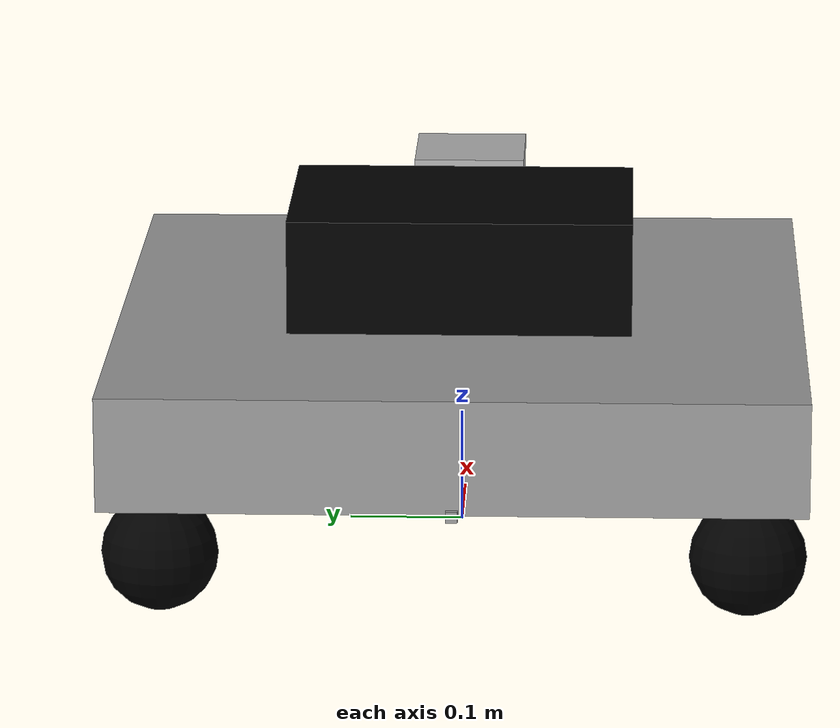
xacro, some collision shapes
<?xml version="1.0"?>
<robot xmlns:xacro="http://www.ros.org/wiki/xacro" name="ropod" >

    <xacro:property name="namespace" value="$(arg namespace)"/>
    <xacro:arg name="namespace" default="ropod"/>

    <xacro:property name="base_length" value="0.6" />
    <xacro:property name="base_thickness" value="0.1" />
    <xacro:property name="wheel_radius" value="0.05" />
    <xacro:property name="wheel_mass" value="1.0" />
    <xacro:property name="base_mass" value="8.0" />
    <xacro:property name="inertia_base" value="0.5" />
    <xacro:property name="inertia_wheels" value="0.001" />

    <xacro:include filename="$(find ropod_sim)/description/xacro/hokuyo.xacro" />

    <material name="silver">
        <color rgba="0.6 0.6 0.6 1.0"/>
    </material>

    <material name="black">
        <color rgba="0.0 0.0 0.0 1.0"/>
    </material>

    <xacro:macro name="sphere_inertia" params="mass radius">
        <inertial>
            <mass value="${mass}" />
            <inertia ixx="${(mass*0.4)*(radius*radius)}"
                     iyy="${(mass*0.4)*(radius*radius)}"
                     iyz="0.0" ixy="0.0" ixz="0.0"
                     izz="${(mass*0.4)*(radius*radius)}" />
        </inertial>
    </xacro:macro>

    <xacro:macro name="ropod_wheel" params="name parent *origin mass radius material_name">
        <joint name="${name}_joint" type="fixed">
            <xacro:insert_block name="origin" />
            <parent link="${parent}_link"/>
            <child link="${name}_link"/>
        </joint>
        <link name="${name}_link">
            <visual>
                <geometry>
                    <sphere radius="${radius}" />
                </geometry>
                <material name="${material_name}"/>
            </visual>
            <collision>
                <geometry>
                    <sphere radius="${radius}" />
                </geometry>
            </collision>
            <xacro:sphere_inertia mass="${mass}" radius="${radius}" />
        </link>
        <gazebo reference="${name}_link">
            <mu1>0.0</mu1>
            <mu2>0.0</mu2>
            <material>
                <ambient>0.0 0.0 0.0 1</ambient>
                <diffuse>0.0 0.0 0.0 1</diffuse>
                <specular>0.01 0.01 0.01 1</specular>
            </material>
        </gazebo>
    </xacro:macro>

    <link name="base_link" />

    <joint name="base_body_joint" type="fixed">
        <origin xyz="0.0 0.0 ${wheel_radius*2 + base_thickness*0.5}" rpy="0 0 0"/>
        <parent link="base_link"/>
        <child link="base_body_link"/>
    </joint>

    <link name="base_body_link">
        <visual>
            <geometry>
                <box size="${base_length} ${base_length} ${base_thickness}"/>
            </geometry>
            <origin xyz="0.0 0.0 0.0" rpy="0.0 0.0 0.0" />
            <material name="silver"/>
        </visual>
        <collision>
            <geometry>
                <box size="${base_length} ${base_length} ${base_thickness}"/>
            </geometry>
            <origin xyz="0.0 0.0 0.0" rpy="0.0 0.0 0.0" />
        </collision>
        <inertial>
          <mass value="${base_mass}"/>
          <inertia ixx="${inertia_base}" ixy="0.0" ixz="0.0" iyy="${inertia_base}" iyz="0.0" izz="${inertia_base}"/>
        </inertial>
    </link>

    <gazebo reference="base_body_link">
        <material>
            <ambient>0.3 0.3 0.3 1</ambient>
            <diffuse>0.7 0.7 0.7 1</diffuse>
            <specular>0.01 0.01 0.01 1</specular>
        </material>
    </gazebo>

    <!-- WHEELS -->
    <xacro:ropod_wheel name="left_rear_wheel" parent="base_body" mass="${wheel_mass}"
                       radius="${wheel_radius}" material_name="black">
        <origin xyz="${-base_length*0.5 + wheel_radius} ${base_length*0.5 - wheel_radius} ${-base_thickness*0.5 - wheel_radius}" rpy="0 0 0"/>
    </xacro:ropod_wheel>

    <xacro:ropod_wheel name="right_rear_wheel" parent="base_body" mass="${wheel_mass}"
                       radius="${wheel_radius}" material_name="black">
        <origin xyz="${-base_length*0.5 + wheel_radius} ${-base_length*0.5 + wheel_radius} ${-base_thickness*0.5 - wheel_radius}" rpy="0 0 0"/>
    </xacro:ropod_wheel>

    <xacro:ropod_wheel name="left_front_wheel" parent="base_body" mass="${wheel_mass}"
                       radius="${wheel_radius}" material_name="black">
        <origin xyz="${base_length*0.5 - wheel_radius} ${base_length*0.5 - wheel_radius} ${-base_thickness*0.5 - wheel_radius}" rpy="0 0 0"/>
    </xacro:ropod_wheel>

    <xacro:ropod_wheel name="right_front_wheel" parent="base_body" mass="${wheel_mass}"
                       radius="${wheel_radius}" material_name="black">
        <origin xyz="${base_length*0.5 - wheel_radius} ${-base_length*0.5 + wheel_radius} ${-base_thickness*0.5 - wheel_radius}" rpy="0 0 0"/>
    </xacro:ropod_wheel>

    <!-- GRIPPER -->
    <joint name="gripper_joint" type="fixed">
        <origin xyz="${-base_length*0.5} 0.0 ${wheel_radius*2}" rpy="0 0 0"/>
        <parent link="base_link"/>
        <child link="gripper_link"/>
    </joint>

    <link name="gripper_link">
        <visual>
            <geometry>
                <box size="${0.01} ${0.01} ${0.01}"/>
            </geometry>
            <origin xyz="0.0 0.0 0.0" rpy="0.0 0.0 0.0" />
            <material name="silver"/>
        </visual>
        <collision>
            <geometry>
                <box size="${0.01} ${0.01} ${0.01}"/>
            </geometry>
            <origin xyz="0.0 0.0 0.0" rpy="0.0 0.0 0.0" />
        </collision>
    </link>

    <!-- LASER -->
    <xacro:hokuyo name="front_laser" parent="base_body"
                  topic="/scan" update_rate="20" min_angle="-2.36" max_angle="2.36">
        <origin xyz="0.25 0.0 0.08" rpy="0 0 0"/>
    </xacro:hokuyo>

    <!-- 3D CAMERA -->

    <!-- HOLONOMIC DRIVE PLUGIN -->
    <gazebo>
        <plugin
            name="ropod::HolonomicControl"
            filename="HolonomicControl">
            <cmd_vel_topic>cmd_vel</cmd_vel_topic>
            <cmd_vel_timeout>0.2</cmd_vel_timeout>
        </plugin>

        <plugin
            name="gz::sim::systems::OdometryPublisher"
            filename="gz-sim-odometry-publisher-system">
            <odom_frame>odom</odom_frame>
            <robot_base_frame>base_link</robot_base_frame>
            <odom_topic>/odom</odom_topic>
            <tf_topic>/odom/tf</tf_topic>
            <dimensions>2</dimensions>
        </plugin>
    </gazebo>

    <!-- DECORATION -->
    <joint name="computer_joint" type="fixed">
        <origin xyz="0.0 0.0 0.1" rpy="0 0 0"/>
        <parent link="base_body_link"/>
        <child link="computer_link"/>
    </joint>

    <link name="computer_link">
        <visual>
            <geometry>
                <box size="0.2 0.3 0.1"/>
            </geometry>
            <material name="black"/>
        </visual>
        <collision>
            <geometry>
                <box size="0.01 0.01 0.01"/>
            </geometry>
        </collision>
    </link>

    <gazebo reference="computer_link">
        <material>
            <ambient>0.0 0.0 0.0 1</ambient>
            <diffuse>0.0 0.0 0.0 1</diffuse>
            <specular>0.01 0.01 0.01 1</specular>
        </material>
    </gazebo>

</robot>

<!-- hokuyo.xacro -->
<robot xmlns:xacro="http://www.ros.org/wiki/xacro">

    <xacro:macro name="hokuyo" params="name parent *origin topic update_rate min_angle max_angle">
        <joint name="${name}_joint" type="fixed">
            <xacro:insert_block name="origin" />
            <parent link="${parent}_link"/>
            <child link="${name}_link"/>
        </joint>
        <link name="${name}_link">
            <collision>
                <origin xyz="0 0 0" rpy="0 0 0"/>
                <geometry>
                    <box size="0.1 0.1 0.1"/>
                </geometry>
            </collision>

            <visual>
                <origin xyz="0 0 0" rpy="0 0 0"/>
                <geometry>
                    <mesh filename="package://ropod_sim/description/meshes/hokuyo.dae"/>
                </geometry>
            </visual>

            <inertial>
                <mass value="1e-5" />
                <origin xyz="0 0 0" rpy="0 0 0"/>
                <inertia ixx="1e-6" ixy="0" ixz="0" iyy="1e-6" iyz="0" izz="1e-6" />
            </inertial>
        </link>

        <gazebo reference="${name}_link">
            <sensor type="gpu_lidar" name="${name}">
                <pose>0 0 0 0 0 0</pose>
                <visualize>false</visualize>
                <update_rate>${update_rate}</update_rate>
                <topic>${topic}</topic>
                <gz_frame_id>${name}_link</gz_frame_id>
                <ray>
                    <scan>
                        <horizontal>
                            <samples>360</samples>
                            <resolution>1</resolution>
                            <min_angle>${min_angle}</min_angle>
                            <max_angle>${max_angle}</max_angle>
                        </horizontal>
                        <vertical>
                            <samples>1</samples>
                            <resolution>0.01</resolution>
                            <min_angle>0</min_angle>
                            <max_angle>0</max_angle>
                        </vertical>
                    </scan>
                    <range>
                        <min>0.1</min>
                        <max>10.0</max>
                        <resolution>0.1</resolution>
                    </range>
                    <noise>
                        <type>gaussian</type>
                        <mean>0.0</mean>
                        <stddev>0.01</stddev>
                    </noise>
                </ray>
            </sensor>
        </gazebo>
    </xacro:macro>
</robot>
